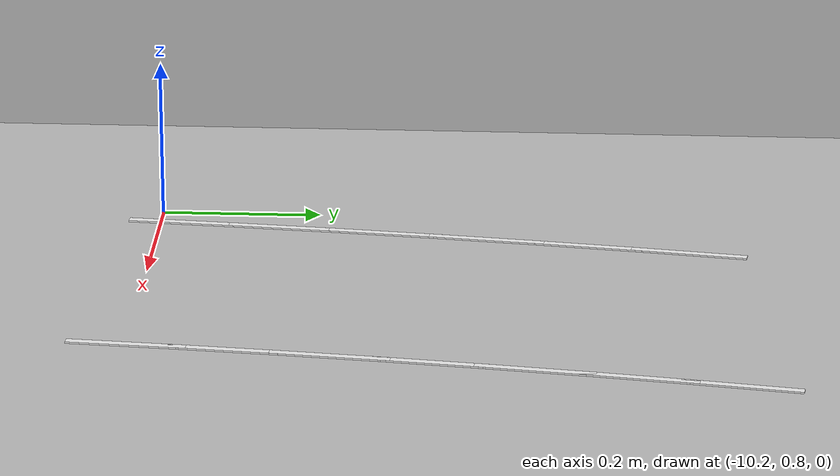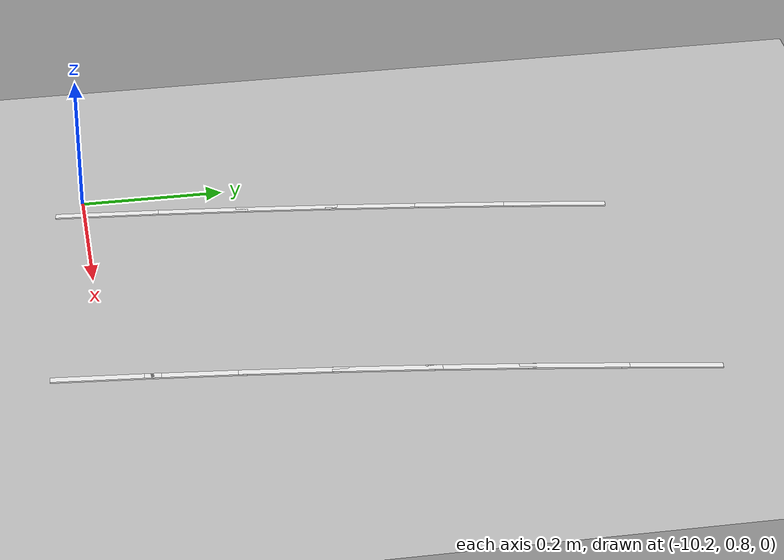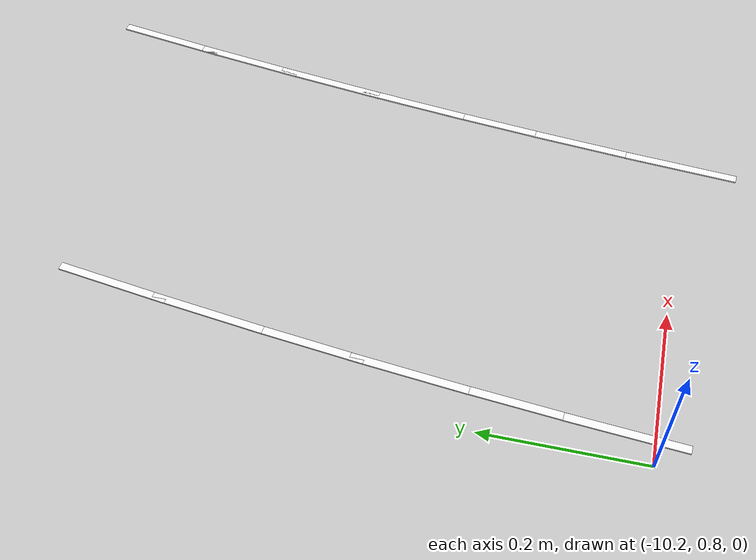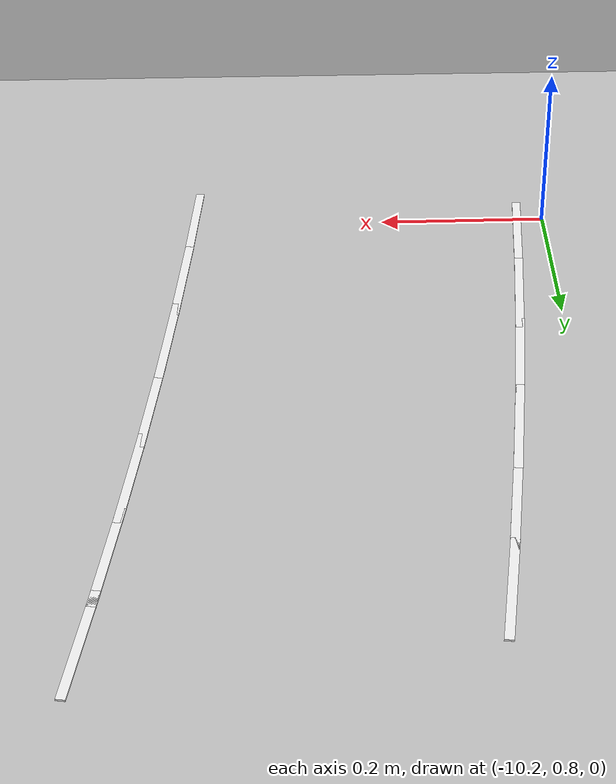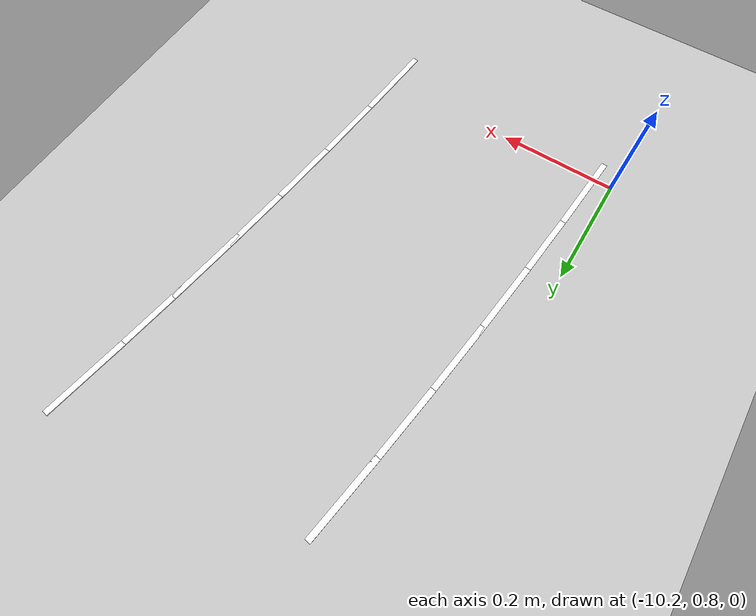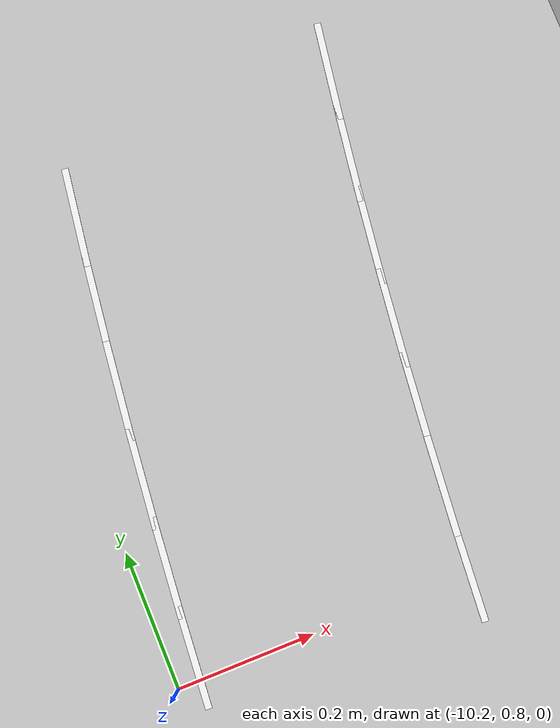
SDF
<sdf version="1.7">
 <world name="default">
  <model name="ground_plane">
   <static>1</static>
   <link name="link">
    <collision name="collision">
     <geometry><plane><normal>0 0 1</normal><size>100 100</size></plane></geometry>
     <surface>
      <contact><collide_bitmask>65535</collide_bitmask></contact>
      <friction><ode><mu>100</mu><mu2>50</mu2></ode></friction>
     </surface>
    </collision>
    <visual name="visual">
     <cast_shadows>0</cast_shadows>
     <geometry><plane><normal>0 0 1</normal><size>100 100</size></plane></geometry>
     <material>
      <script><uri>file://media/materials/scripts/gazebo.material</uri><name>Gazebo/Grey</name></script>
     </material>
    </visual>
   </link>
  </model>
  <model name="lane_line_left_237">
   <static>1</static>
   <link name="link">
    <pose>0 0 -0.004 0 -0 0</pose>
    <visual name="visual">
     <geometry><box><size>0.1457 0.01 0.01</size></box></geometry>
     <material><ambient>1 1 1 1</ambient><diffuse>1 1 1 1</diffuse></material>
    </visual>
    <collision name="collision"><geometry><box><size>0.1457 0.01 0.01</size></box></geometry></collision>
   </link>
   <pose>-9.67915 1.53303 0 0 0 -1.72788</pose>
  </model>
  <model name="lane_line_left_238">
   <static>1</static>
   <link name="link">
    <pose>0 0 -0.004 0 -0 0</pose>
    <visual name="visual">
     <geometry><box><size>0.1457 0.01 0.01</size></box></geometry>
     <material><ambient>1 1 1 1</ambient><diffuse>1 1 1 1</diffuse></material>
    </visual>
    <collision name="collision"><geometry><box><size>0.1457 0.01 0.01</size></box></geometry></collision>
   </link>
   <pose>-9.69765 1.41128 0 0 0 -1.71531</pose>
  </model>
  <model name="lane_line_right_238">
   <static>1</static>
   <link name="link">
    <pose>0 0 -0.004 0 -0 0</pose>
    <visual name="visual">
     <geometry><box><size>0.1457 0.01 0.01</size></box></geometry>
     <material><ambient>1 1 1 1</ambient><diffuse>1 1 1 1</diffuse></material>
    </visual>
    <collision name="collision"><geometry><box><size>0.1457 0.01 0.01</size></box></geometry></collision>
   </link>
   <pose>-10.0935 1.46888 0 0 0 -1.71531</pose>
  </model>
  <model name="lane_line_left_239">
   <static>1</static>
   <link name="link">
    <pose>0 0 -0.004 0 -0 0</pose>
    <visual name="visual">
     <geometry><box><size>0.1457 0.01 0.01</size></box></geometry>
     <material><ambient>1 1 1 1</ambient><diffuse>1 1 1 1</diffuse></material>
    </visual>
    <collision name="collision"><geometry><box><size>0.1457 0.01 0.01</size></box></geometry></collision>
   </link>
   <pose>-9.71462 1.2893 0 0 0 -1.70274</pose>
  </model>
  <model name="lane_line_right_239">
   <static>1</static>
   <link name="link">
    <pose>0 0 -0.004 0 -0 0</pose>
    <visual name="visual">
     <geometry><box><size>0.1457 0.01 0.01</size></box></geometry>
     <material><ambient>1 1 1 1</ambient><diffuse>1 1 1 1</diffuse></material>
    </visual>
    <collision name="collision"><geometry><box><size>0.1457 0.01 0.01</size></box></geometry></collision>
   </link>
   <pose>-10.1111 1.34193 0 0 0 -1.70274</pose>
  </model>
  <model name="lane_line_left_240">
   <static>1</static>
   <link name="link">
    <pose>0 0 -0.004 0 -0 0</pose>
    <visual name="visual">
     <geometry><box><size>0.1457 0.01 0.01</size></box></geometry>
     <material><ambient>1 1 1 1</ambient><diffuse>1 1 1 1</diffuse></material>
    </visual>
    <collision name="collision"><geometry><box><size>0.1457 0.01 0.01</size></box></geometry></collision>
   </link>
   <pose>-9.73005 1.16713 0 0 0 -1.69018</pose>
  </model>
  <model name="lane_line_right_240">
   <static>1</static>
   <link name="link">
    <pose>0 0 -0.004 0 -0 0</pose>
    <visual name="visual">
     <geometry><box><size>0.1457 0.01 0.01</size></box></geometry>
     <material><ambient>1 1 1 1</ambient><diffuse>1 1 1 1</diffuse></material>
    </visual>
    <collision name="collision"><geometry><box><size>0.1457 0.01 0.01</size></box></geometry></collision>
   </link>
   <pose>-10.1272 1.21477 0 0 0 -1.69018</pose>
  </model>
  <model name="lane_line_left_241">
   <static>1</static>
   <link name="link">
    <pose>0 0 -0.004 0 -0 0</pose>
    <visual name="visual">
     <geometry><box><size>0.1457 0.01 0.01</size></box></geometry>
     <material><ambient>1 1 1 1</ambient><diffuse>1 1 1 1</diffuse></material>
    </visual>
    <collision name="collision"><geometry><box><size>0.1457 0.01 0.01</size></box></geometry></collision>
   </link>
   <pose>-9.74395 1.04477 0 0 0 -1.67761</pose>
  </model>
  <model name="lane_line_right_241">
   <static>1</static>
   <link name="link">
    <pose>0 0 -0.004 0 -0 0</pose>
    <visual name="visual">
     <geometry><box><size>0.1457 0.01 0.01</size></box></geometry>
     <material><ambient>1 1 1 1</ambient><diffuse>1 1 1 1</diffuse></material>
    </visual>
    <collision name="collision"><geometry><box><size>0.1457 0.01 0.01</size></box></geometry></collision>
   </link>
   <pose>-10.1417 1.08741 0 0 0 -1.67761</pose>
  </model>
  <model name="lane_line_left_242">
   <static>1</static>
   <link name="link">
    <pose>0 0 -0.004 0 -0 0</pose>
    <visual name="visual">
     <geometry><box><size>0.1457 0.01 0.01</size></box></geometry>
     <material><ambient>1 1 1 1</ambient><diffuse>1 1 1 1</diffuse></material>
    </visual>
    <collision name="collision"><geometry><box><size>0.1457 0.01 0.01</size></box></geometry></collision>
   </link>
   <pose>-9.75631 0.922243 0 0 0 -1.66504</pose>
  </model>
  <model name="lane_line_right_242">
   <static>1</static>
   <link name="link">
    <pose>0 0 -0.004 0 -0 0</pose>
    <visual name="visual">
     <geometry><box><size>0.1457 0.01 0.01</size></box></geometry>
     <material><ambient>1 1 1 1</ambient><diffuse>1 1 1 1</diffuse></material>
    </visual>
    <collision name="collision"><geometry><box><size>0.1457 0.01 0.01</size></box></geometry></collision>
   </link>
   <pose>-10.1545 0.959886 0 0 0 -1.66504</pose>
  </model>
  <model name="lane_line_left_243">
   <static>1</static>
   <link name="link">
    <pose>0 0 -0.004 0 -0 0</pose>
    <visual name="visual">
     <geometry><box><size>0.1457 0.01 0.01</size></box></geometry>
     <material><ambient>1 1 1 1</ambient><diffuse>1 1 1 1</diffuse></material>
    </visual>
    <collision name="collision"><geometry><box><size>0.1457 0.01 0.01</size></box></geometry></collision>
   </link>
   <pose>-9.76713 0.799572 0 0 0 -1.65248</pose>
  </model>
  <model name="lane_line_right_243">
   <static>1</static>
   <link name="link">
    <pose>0 0 -0.004 0 -0 0</pose>
    <visual name="visual">
     <geometry><box><size>0.1457 0.01 0.01</size></box></geometry>
     <material><ambient>1 1 1 1</ambient><diffuse>1 1 1 1</diffuse></material>
    </visual>
    <collision name="collision"><geometry><box><size>0.1457 0.01 0.01</size></box></geometry></collision>
   </link>
   <pose>-10.1658 0.832208 0 0 0 -1.65248</pose>
  </model>
 </world>
</sdf>
